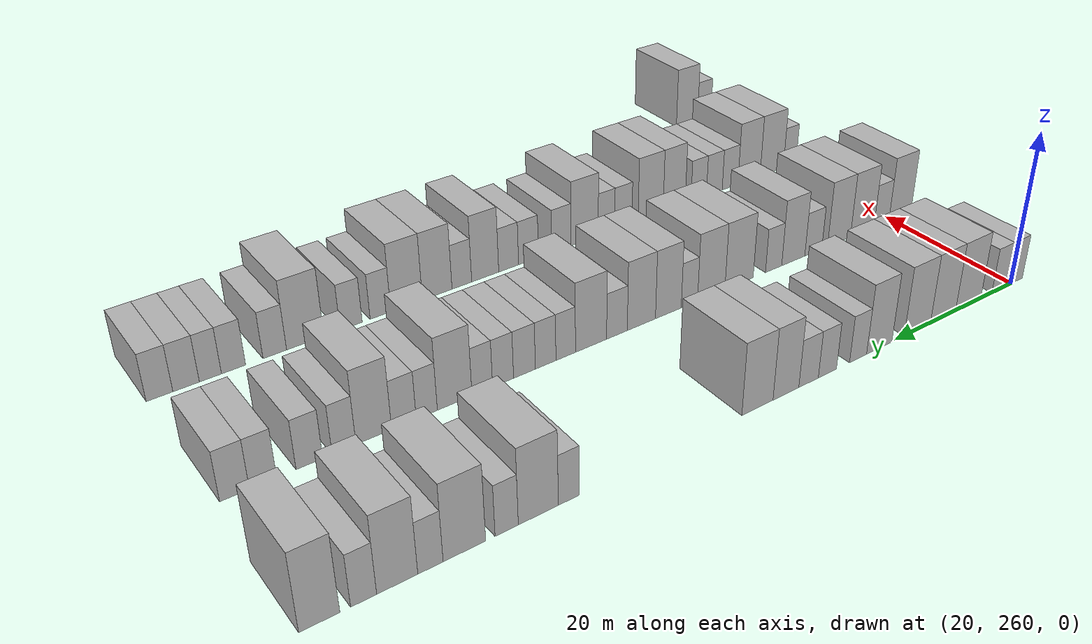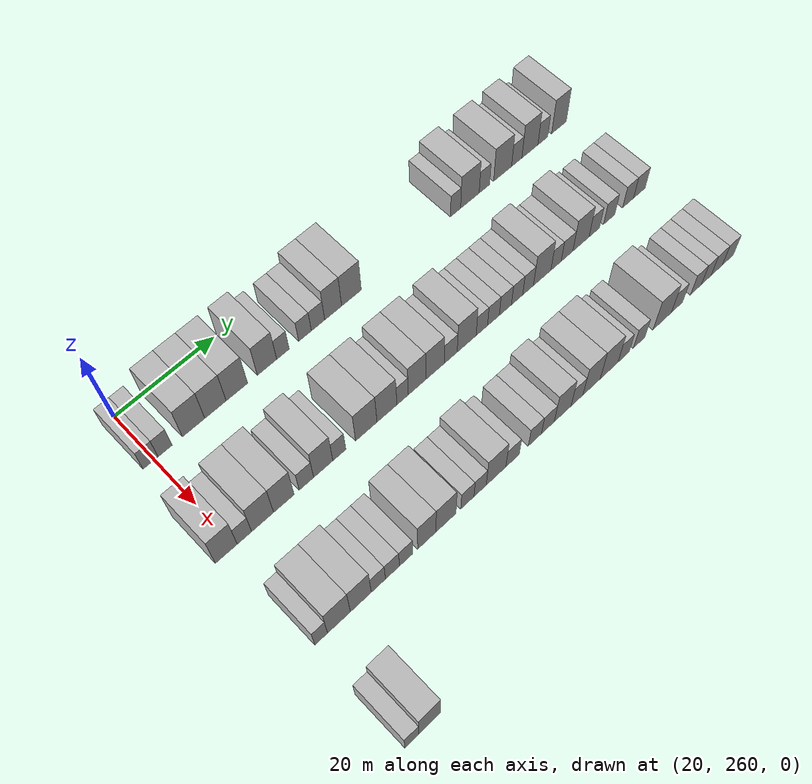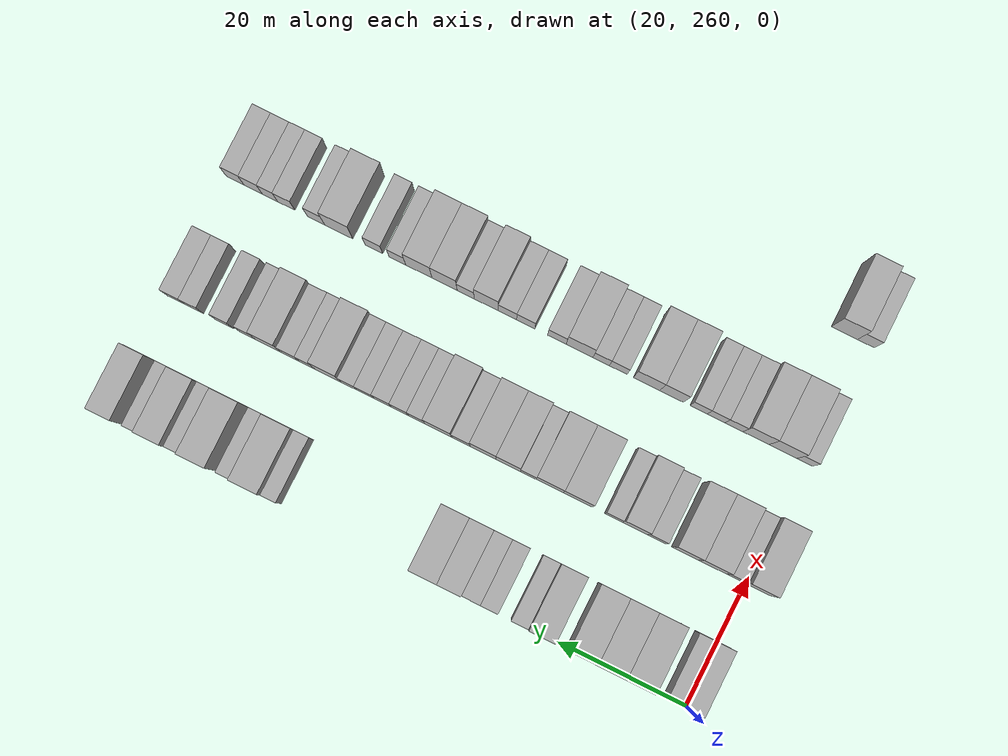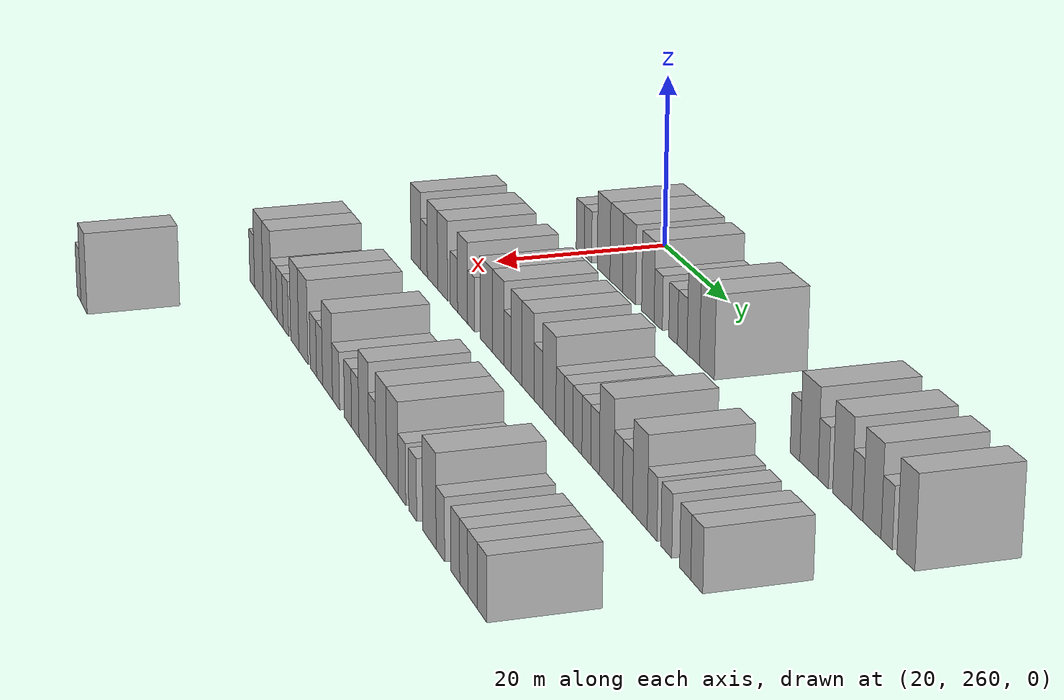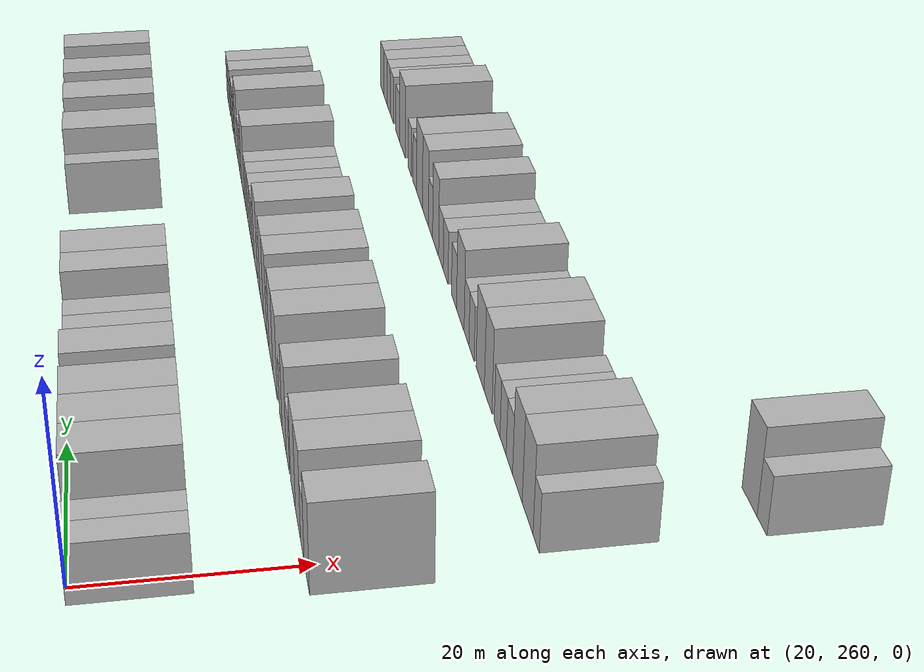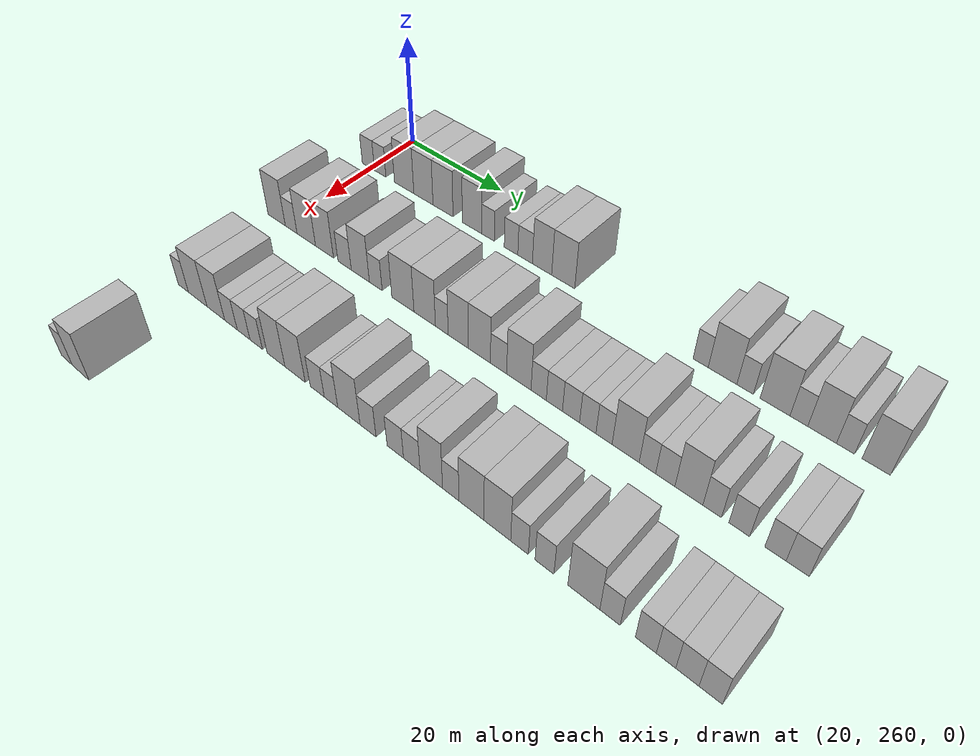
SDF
<sdf version="1.6">
 <world name="default">
  <model name="building_158">
   <static>1</static>
   <pose>25.0000 259.3134 0 0.000000 0.000000 0.000000</pose>
   <link name="link">
    <pose>0 0 3.00 0 0 0</pose>
    <collision name="collision"><geometry><box><size>10.0000 2.8975 6.0000</size></box></geometry></collision>
    <visual name="visual">
     <cast_shadows>0</cast_shadows>
     <geometry><box><size>10.0000 2.8975 6.0000</size></box></geometry>
     <material>
      <script>
       <uri>model://HANNAS_wall/materials/scripts</uri>
       <uri>model://HANNAS_wall/materials/textures</uri>
       <name>vrc/HANNAS_wall</name>
      </script>
     </material>
    </visual>
   </link>
  </model>
  <model name="building_159">
   <static>1</static>
   <pose>25.0000 262.1163 0 0.000000 0.000000 0.000000</pose>
   <link name="link">
    <pose>0 0 3.00 0 0 0</pose>
    <collision name="collision"><geometry><box><size>10.0000 2.7084 6.0000</size></box></geometry></collision>
    <visual name="visual">
     <cast_shadows>0</cast_shadows>
     <geometry><box><size>10.0000 2.7084 6.0000</size></box></geometry>
     <material>
      <script>
       <uri>model://HANNAS_wall/materials/scripts</uri>
       <uri>model://HANNAS_wall/materials/textures</uri>
       <name>vrc/HANNAS_wall</name>
      </script>
     </material>
    </visual>
   </link>
  </model>
  <model name="building_160">
   <static>1</static>
   <pose>25.0000 267.6855 0 0.000000 0.000000 0.000000</pose>
   <link name="link">
    <pose>0 0 4.50 0 0 0</pose>
    <collision name="collision"><geometry><box><size>10.0000 4.4300 9.0000</size></box></geometry></collision>
    <visual name="visual">
     <cast_shadows>0</cast_shadows>
     <geometry><box><size>10.0000 4.4300 9.0000</size></box></geometry>
     <material>
      <script>
       <uri>model://HANNAS_wall/materials/scripts</uri>
       <uri>model://HANNAS_wall/materials/textures</uri>
       <name>vrc/HANNAS_wall</name>
      </script>
     </material>
    </visual>
   </link>
  </model>
  <model name="building_161">
   <static>1</static>
   <pose>25.0000 272.0436 0 0.000000 0.000000 0.000000</pose>
   <link name="link">
    <pose>0 0 4.50 0 0 0</pose>
    <collision name="collision"><geometry><box><size>10.0000 4.2862 9.0000</size></box></geometry></collision>
    <visual name="visual">
     <cast_shadows>0</cast_shadows>
     <geometry><box><size>10.0000 4.2862 9.0000</size></box></geometry>
     <material>
      <script>
       <uri>model://HANNAS_wall/materials/scripts</uri>
       <uri>model://HANNAS_wall/materials/textures</uri>
       <name>vrc/HANNAS_wall</name>
      </script>
     </material>
    </visual>
   </link>
  </model>
  <model name="building_162">
   <static>1</static>
   <pose>25.0000 276.3639 0 0.000000 0.000000 0.000000</pose>
   <link name="link">
    <pose>0 0 4.50 0 0 0</pose>
    <collision name="collision"><geometry><box><size>10.0000 4.3543 9.0000</size></box></geometry></collision>
    <visual name="visual">
     <cast_shadows>0</cast_shadows>
     <geometry><box><size>10.0000 4.3543 9.0000</size></box></geometry>
     <material>
      <script>
       <uri>model://HANNAS_wall/materials/scripts</uri>
       <uri>model://HANNAS_wall/materials/textures</uri>
       <name>vrc/HANNAS_wall</name>
      </script>
     </material>
    </visual>
   </link>
  </model>
  <model name="building_163">
   <static>1</static>
   <pose>25.0000 282.5454 0 0.000000 0.000000 0.000000</pose>
   <link name="link">
    <pose>0 0 4.50 0 0 0</pose>
    <collision name="collision"><geometry><box><size>10.0000 4.0086 9.0000</size></box></geometry></collision>
    <visual name="visual">
     <cast_shadows>0</cast_shadows>
     <geometry><box><size>10.0000 4.0086 9.0000</size></box></geometry>
     <material>
      <script>
       <uri>model://HANNAS_wall/materials/scripts</uri>
       <uri>model://HANNAS_wall/materials/textures</uri>
       <name>vrc/HANNAS_wall</name>
      </script>
     </material>
    </visual>
   </link>
  </model>
  <model name="building_164">
   <static>1</static>
   <pose>25.0000 285.8648 0 0.000000 0.000000 0.000000</pose>
   <link name="link">
    <pose>0 0 3.00 0 0 0</pose>
    <collision name="collision"><geometry><box><size>10.0000 2.6303 6.0000</size></box></geometry></collision>
    <visual name="visual">
     <cast_shadows>0</cast_shadows>
     <geometry><box><size>10.0000 2.6303 6.0000</size></box></geometry>
     <material>
      <script>
       <uri>model://HANNAS_wall/materials/scripts</uri>
       <uri>model://HANNAS_wall/materials/textures</uri>
       <name>vrc/HANNAS_wall</name>
      </script>
     </material>
    </visual>
   </link>
  </model>
  <model name="building_165">
   <static>1</static>
   <pose>25.0000 290.5354 0 0.000000 0.000000 0.000000</pose>
   <link name="link">
    <pose>0 0 3.00 0 0 0</pose>
    <collision name="collision"><geometry><box><size>10.0000 2.7110 6.0000</size></box></geometry></collision>
    <visual name="visual">
     <cast_shadows>0</cast_shadows>
     <geometry><box><size>10.0000 2.7110 6.0000</size></box></geometry>
     <material>
      <script>
       <uri>model://HANNAS_wall/materials/scripts</uri>
       <uri>model://HANNAS_wall/materials/textures</uri>
       <name>vrc/HANNAS_wall</name>
      </script>
     </material>
    </visual>
   </link>
  </model>
  <model name="building_166">
   <static>1</static>
   <pose>25.0000 293.3190 0 0.000000 0.000000 0.000000</pose>
   <link name="link">
    <pose>0 0 3.00 0 0 0</pose>
    <collision name="collision"><geometry><box><size>10.0000 2.8562 6.0000</size></box></geometry></collision>
    <visual name="visual">
     <cast_shadows>0</cast_shadows>
     <geometry><box><size>10.0000 2.8562 6.0000</size></box></geometry>
     <material>
      <script>
       <uri>model://HANNAS_wall/materials/scripts</uri>
       <uri>model://HANNAS_wall/materials/textures</uri>
       <name>vrc/HANNAS_wall</name>
      </script>
     </material>
    </visual>
   </link>
  </model>
  <model name="building_167">
   <static>1</static>
   <pose>25.0000 296.5931 0 0.000000 0.000000 0.000000</pose>
   <link name="link">
    <pose>0 0 4.50 0 0 0</pose>
    <collision name="collision"><geometry><box><size>10.0000 3.6919 9.0000</size></box></geometry></collision>
    <visual name="visual">
     <cast_shadows>0</cast_shadows>
     <geometry><box><size>10.0000 3.6919 9.0000</size></box></geometry>
     <material>
      <script>
       <uri>model://HANNAS_wall/materials/scripts</uri>
       <uri>model://HANNAS_wall/materials/textures</uri>
       <name>vrc/HANNAS_wall</name>
      </script>
     </material>
    </visual>
   </link>
  </model>
  <model name="building_168">
   <static>1</static>
   <pose>25.0000 300.5993 0 0.000000 0.000000 0.000000</pose>
   <link name="link">
    <pose>0 0 4.50 0 0 0</pose>
    <collision name="collision"><geometry><box><size>10.0000 4.3204 9.0000</size></box></geometry></collision>
    <visual name="visual">
     <cast_shadows>0</cast_shadows>
     <geometry><box><size>10.0000 4.3204 9.0000</size></box></geometry>
     <material>
      <script>
       <uri>model://HANNAS_wall/materials/scripts</uri>
       <uri>model://HANNAS_wall/materials/textures</uri>
       <name>vrc/HANNAS_wall</name>
      </script>
     </material>
    </visual>
   </link>
  </model>
  <model name="building_169">
   <static>1</static>
   <pose>25.0000 324.3744 0 0.000000 0.000000 0.000000</pose>
   <link name="link">
    <pose>0 0 3.00 0 0 0</pose>
    <collision name="collision"><geometry><box><size>10.0000 2.4100 6.0000</size></box></geometry></collision>
    <visual name="visual">
     <cast_shadows>0</cast_shadows>
     <geometry><box><size>10.0000 2.4100 6.0000</size></box></geometry>
     <material>
      <script>
       <uri>model://HANNAS_wall/materials/scripts</uri>
       <uri>model://HANNAS_wall/materials/textures</uri>
       <name>vrc/HANNAS_wall</name>
      </script>
     </material>
    </visual>
   </link>
  </model>
  <model name="building_170">
   <static>1</static>
   <pose>25.0000 327.8074 0 0.000000 0.000000 0.000000</pose>
   <link name="link">
    <pose>0 0 4.50 0 0 0</pose>
    <collision name="collision"><geometry><box><size>10.0000 4.4559 9.0000</size></box></geometry></collision>
    <visual name="visual">
     <cast_shadows>0</cast_shadows>
     <geometry><box><size>10.0000 4.4559 9.0000</size></box></geometry>
     <material>
      <script>
       <uri>model://HANNAS_wall/materials/scripts</uri>
       <uri>model://HANNAS_wall/materials/textures</uri>
       <name>vrc/HANNAS_wall</name>
      </script>
     </material>
    </visual>
   </link>
  </model>
  <model name="building_171">
   <static>1</static>
   <pose>25.0000 331.2910 0 0.000000 0.000000 0.000000</pose>
   <link name="link">
    <pose>0 0 3.00 0 0 0</pose>
    <collision name="collision"><geometry><box><size>10.0000 2.5112 6.0000</size></box></geometry></collision>
    <visual name="visual">
     <cast_shadows>0</cast_shadows>
     <geometry><box><size>10.0000 2.5112 6.0000</size></box></geometry>
     <material>
      <script>
       <uri>model://HANNAS_wall/materials/scripts</uri>
       <uri>model://HANNAS_wall/materials/textures</uri>
       <name>vrc/HANNAS_wall</name>
      </script>
     </material>
    </visual>
   </link>
  </model>
  <model name="building_172">
   <static>1</static>
   <pose>25.0000 335.7538 0 0.000000 0.000000 0.000000</pose>
   <link name="link">
    <pose>0 0 4.50 0 0 0</pose>
    <collision name="collision"><geometry><box><size>10.0000 4.4143 9.0000</size></box></geometry></collision>
    <visual name="visual">
     <cast_shadows>0</cast_shadows>
     <geometry><box><size>10.0000 4.4143 9.0000</size></box></geometry>
     <material>
      <script>
       <uri>model://HANNAS_wall/materials/scripts</uri>
       <uri>model://HANNAS_wall/materials/textures</uri>
       <name>vrc/HANNAS_wall</name>
      </script>
     </material>
    </visual>
   </link>
  </model>
  <model name="building_173">
   <static>1</static>
   <pose>25.0000 339.2369 0 0.000000 0.000000 0.000000</pose>
   <link name="link">
    <pose>0 0 3.00 0 0 0</pose>
    <collision name="collision"><geometry><box><size>10.0000 2.5520 6.0000</size></box></geometry></collision>
    <visual name="visual">
     <cast_shadows>0</cast_shadows>
     <geometry><box><size>10.0000 2.5520 6.0000</size></box></geometry>
     <material>
      <script>
       <uri>model://HANNAS_wall/materials/scripts</uri>
       <uri>model://HANNAS_wall/materials/textures</uri>
       <name>vrc/HANNAS_wall</name>
      </script>
     </material>
    </visual>
   </link>
  </model>
  <model name="building_174">
   <static>1</static>
   <pose>25.0000 342.5220 0 0.000000 0.000000 0.000000</pose>
   <link name="link">
    <pose>0 0 4.50 0 0 0</pose>
    <collision name="collision"><geometry><box><size>10.0000 4.0182 9.0000</size></box></geometry></collision>
    <visual name="visual">
     <cast_shadows>0</cast_shadows>
     <geometry><box><size>10.0000 4.0182 9.0000</size></box></geometry>
     <material>
      <script>
       <uri>model://HANNAS_wall/materials/scripts</uri>
       <uri>model://HANNAS_wall/materials/textures</uri>
       <name>vrc/HANNAS_wall</name>
      </script>
     </material>
    </visual>
   </link>
  </model>
  <model name="building_175">
   <static>1</static>
   <pose>25.0000 345.7687 0 0.000000 0.000000 0.000000</pose>
   <link name="link">
    <pose>0 0 3.00 0 0 0</pose>
    <collision name="collision"><geometry><box><size>10.0000 2.4752 6.0000</size></box></geometry></collision>
    <visual name="visual">
     <cast_shadows>0</cast_shadows>
     <geometry><box><size>10.0000 2.4752 6.0000</size></box></geometry>
     <material>
      <script>
       <uri>model://HANNAS_wall/materials/scripts</uri>
       <uri>model://HANNAS_wall/materials/textures</uri>
       <name>vrc/HANNAS_wall</name>
      </script>
     </material>
    </visual>
   </link>
  </model>
  <model name="building_176">
   <static>1</static>
   <pose>25.0000 349.8920 0 0.000000 0.000000 0.000000</pose>
   <link name="link">
    <pose>0 0 4.50 0 0 0</pose>
    <collision name="collision"><geometry><box><size>10.0000 3.7712 9.0000</size></box></geometry></collision>
    <visual name="visual">
     <cast_shadows>0</cast_shadows>
     <geometry><box><size>10.0000 3.7712 9.0000</size></box></geometry>
     <material>
      <script>
       <uri>model://HANNAS_wall/materials/scripts</uri>
       <uri>model://HANNAS_wall/materials/textures</uri>
       <name>vrc/HANNAS_wall</name>
      </script>
     </material>
    </visual>
   </link>
  </model>
  <model name="building_320">
   <static>1</static>
   <pose>44.0000 258.3635 0 0.000000 0.000000 0.000000</pose>
   <link name="link">
    <pose>0 0 4.50 0 0 0</pose>
    <collision name="collision"><geometry><box><size>10.0000 4.1656 9.0000</size></box></geometry></collision>
    <visual name="visual">
     <cast_shadows>0</cast_shadows>
     <geometry><box><size>10.0000 4.1656 9.0000</size></box></geometry>
     <material>
      <script>
       <uri>model://HANNAS_wall/materials/scripts</uri>
       <uri>model://HANNAS_wall/materials/textures</uri>
       <name>vrc/HANNAS_wall</name>
      </script>
     </material>
    </visual>
   </link>
  </model>
  <model name="building_321">
   <static>1</static>
   <pose>44.0000 261.8318 0 0.000000 0.000000 0.000000</pose>
   <link name="link">
    <pose>0 0 3.00 0 0 0</pose>
    <collision name="collision"><geometry><box><size>10.0000 2.7711 6.0000</size></box></geometry></collision>
    <visual name="visual">
     <cast_shadows>0</cast_shadows>
     <geometry><box><size>10.0000 2.7711 6.0000</size></box></geometry>
     <material>
      <script>
       <uri>model://HANNAS_wall/materials/scripts</uri>
       <uri>model://HANNAS_wall/materials/textures</uri>
       <name>vrc/HANNAS_wall</name>
      </script>
     </material>
    </visual>
   </link>
  </model>
  <model name="building_322">
   <static>1</static>
   <pose>44.0000 265.3546 0 0.000000 0.000000 0.000000</pose>
   <link name="link">
    <pose>0 0 4.50 0 0 0</pose>
    <collision name="collision"><geometry><box><size>10.0000 4.2746 9.0000</size></box></geometry></collision>
    <visual name="visual">
     <cast_shadows>0</cast_shadows>
     <geometry><box><size>10.0000 4.2746 9.0000</size></box></geometry>
     <material>
      <script>
       <uri>model://HANNAS_wall/materials/scripts</uri>
       <uri>model://HANNAS_wall/materials/textures</uri>
       <name>vrc/HANNAS_wall</name>
      </script>
     </material>
    </visual>
   </link>
  </model>
  <model name="building_323">
   <static>1</static>
   <pose>44.0000 269.5151 0 0.000000 0.000000 0.000000</pose>
   <link name="link">
    <pose>0 0 4.50 0 0 0</pose>
    <collision name="collision"><geometry><box><size>10.0000 4.0462 9.0000</size></box></geometry></collision>
    <visual name="visual">
     <cast_shadows>0</cast_shadows>
     <geometry><box><size>10.0000 4.0462 9.0000</size></box></geometry>
     <material>
      <script>
       <uri>model://HANNAS_wall/materials/scripts</uri>
       <uri>model://HANNAS_wall/materials/textures</uri>
       <name>vrc/HANNAS_wall</name>
      </script>
     </material>
    </visual>
   </link>
  </model>
  <model name="building_324">
   <static>1</static>
   <pose>44.0000 273.9960 0 0.000000 0.000000 0.000000</pose>
   <link name="link">
    <pose>0 0 3.00 0 0 0</pose>
    <collision name="collision"><geometry><box><size>10.0000 2.9157 6.0000</size></box></geometry></collision>
    <visual name="visual">
     <cast_shadows>0</cast_shadows>
     <geometry><box><size>10.0000 2.9157 6.0000</size></box></geometry>
     <material>
      <script>
       <uri>model://HANNAS_wall/materials/scripts</uri>
       <uri>model://HANNAS_wall/materials/textures</uri>
       <name>vrc/HANNAS_wall</name>
      </script>
     </material>
    </visual>
   </link>
  </model>
  <model name="building_325">
   <static>1</static>
   <pose>44.0000 277.3968 0 0.000000 0.000000 0.000000</pose>
   <link name="link">
    <pose>0 0 4.50 0 0 0</pose>
    <collision name="collision"><geometry><box><size>10.0000 3.8858 9.0000</size></box></geometry></collision>
    <visual name="visual">
     <cast_shadows>0</cast_shadows>
     <geometry><box><size>10.0000 3.8858 9.0000</size></box></geometry>
     <material>
      <script>
       <uri>model://HANNAS_wall/materials/scripts</uri>
       <uri>model://HANNAS_wall/materials/textures</uri>
       <name>vrc/HANNAS_wall</name>
      </script>
     </material>
    </visual>
   </link>
  </model>
  <model name="building_326">
   <static>1</static>
   <pose>44.0000 280.6738 0 0.000000 0.000000 0.000000</pose>
   <link name="link">
    <pose>0 0 3.00 0 0 0</pose>
    <collision name="collision"><geometry><box><size>10.0000 2.6682 6.0000</size></box></geometry></collision>
    <visual name="visual">
     <cast_shadows>0</cast_shadows>
     <geometry><box><size>10.0000 2.6682 6.0000</size></box></geometry>
     <material>
      <script>
       <uri>model://HANNAS_wall/materials/scripts</uri>
       <uri>model://HANNAS_wall/materials/textures</uri>
       <name>vrc/HANNAS_wall</name>
      </script>
     </material>
    </visual>
   </link>
  </model>
  <model name="building_327">
   <static>1</static>
   <pose>44.0000 286.2523 0 0.000000 0.000000 0.000000</pose>
   <link name="link">
    <pose>0 0 4.50 0 0 0</pose>
    <collision name="collision"><geometry><box><size>10.0000 4.4889 9.0000</size></box></geometry></collision>
    <visual name="visual">
     <cast_shadows>0</cast_shadows>
     <geometry><box><size>10.0000 4.4889 9.0000</size></box></geometry>
     <material>
      <script>
       <uri>model://HANNAS_wall/materials/scripts</uri>
       <uri>model://HANNAS_wall/materials/textures</uri>
       <name>vrc/HANNAS_wall</name>
      </script>
     </material>
    </visual>
   </link>
  </model>
  <model name="building_328">
   <static>1</static>
   <pose>44.0000 290.6087 0 0.000000 0.000000 0.000000</pose>
   <link name="link">
    <pose>0 0 4.50 0 0 0</pose>
    <collision name="collision"><geometry><box><size>10.0000 4.2240 9.0000</size></box></geometry></collision>
    <visual name="visual">
     <cast_shadows>0</cast_shadows>
     <geometry><box><size>10.0000 4.2240 9.0000</size></box></geometry>
     <material>
      <script>
       <uri>model://HANNAS_wall/materials/scripts</uri>
       <uri>model://HANNAS_wall/materials/textures</uri>
       <name>vrc/HANNAS_wall</name>
      </script>
     </material>
    </visual>
   </link>
  </model>
  <model name="building_329">
   <static>1</static>
   <pose>44.0000 293.9461 0 0.000000 0.000000 0.000000</pose>
   <link name="link">
    <pose>0 0 3.00 0 0 0</pose>
    <collision name="collision"><geometry><box><size>10.0000 2.4508 6.0000</size></box></geometry></collision>
    <visual name="visual">
     <cast_shadows>0</cast_shadows>
     <geometry><box><size>10.0000 2.4508 6.0000</size></box></geometry>
     <material>
      <script>
       <uri>model://HANNAS_wall/materials/scripts</uri>
       <uri>model://HANNAS_wall/materials/textures</uri>
       <name>vrc/HANNAS_wall</name>
      </script>
     </material>
    </visual>
   </link>
  </model>
  <model name="building_330">
   <static>1</static>
   <pose>44.0000 297.0698 0 0.000000 0.000000 0.000000</pose>
   <link name="link">
    <pose>0 0 4.50 0 0 0</pose>
    <collision name="collision"><geometry><box><size>10.0000 3.7965 9.0000</size></box></geometry></collision>
    <visual name="visual">
     <cast_shadows>0</cast_shadows>
     <geometry><box><size>10.0000 3.7965 9.0000</size></box></geometry>
     <material>
      <script>
       <uri>model://HANNAS_wall/materials/scripts</uri>
       <uri>model://HANNAS_wall/materials/textures</uri>
       <name>vrc/HANNAS_wall</name>
      </script>
     </material>
    </visual>
   </link>
  </model>
  <model name="building_331">
   <static>1</static>
   <pose>44.0000 300.9903 0 0.000000 0.000000 0.000000</pose>
   <link name="link">
    <pose>0 0 4.50 0 0 0</pose>
    <collision name="collision"><geometry><box><size>10.0000 4.0444 9.0000</size></box></geometry></collision>
    <visual name="visual">
     <cast_shadows>0</cast_shadows>
     <geometry><box><size>10.0000 4.0444 9.0000</size></box></geometry>
     <material>
      <script>
       <uri>model://HANNAS_wall/materials/scripts</uri>
       <uri>model://HANNAS_wall/materials/textures</uri>
       <name>vrc/HANNAS_wall</name>
      </script>
     </material>
    </visual>
   </link>
  </model>
  <model name="building_332">
   <static>1</static>
   <pose>44.0000 304.4606 0 0.000000 0.000000 0.000000</pose>
   <link name="link">
    <pose>0 0 3.00 0 0 0</pose>
    <collision name="collision"><geometry><box><size>10.0000 2.8963 6.0000</size></box></geometry></collision>
    <visual name="visual">
     <cast_shadows>0</cast_shadows>
     <geometry><box><size>10.0000 2.8963 6.0000</size></box></geometry>
     <material>
      <script>
       <uri>model://HANNAS_wall/materials/scripts</uri>
       <uri>model://HANNAS_wall/materials/textures</uri>
       <name>vrc/HANNAS_wall</name>
      </script>
     </material>
    </visual>
   </link>
  </model>
  <model name="building_333">
   <static>1</static>
   <pose>44.0000 308.0352 0 0.000000 0.000000 0.000000</pose>
   <link name="link">
    <pose>0 0 4.50 0 0 0</pose>
    <collision name="collision"><geometry><box><size>10.0000 4.2530 9.0000</size></box></geometry></collision>
    <visual name="visual">
     <cast_shadows>0</cast_shadows>
     <geometry><box><size>10.0000 4.2530 9.0000</size></box></geometry>
     <material>
      <script>
       <uri>model://HANNAS_wall/materials/scripts</uri>
       <uri>model://HANNAS_wall/materials/textures</uri>
       <name>vrc/HANNAS_wall</name>
      </script>
     </material>
    </visual>
   </link>
  </model>
  <model name="building_334">
   <static>1</static>
   <pose>44.0000 311.4619 0 0.000000 0.000000 0.000000</pose>
   <link name="link">
    <pose>0 0 3.00 0 0 0</pose>
    <collision name="collision"><geometry><box><size>10.0000 2.6003 6.0000</size></box></geometry></collision>
    <visual name="visual">
     <cast_shadows>0</cast_shadows>
     <geometry><box><size>10.0000 2.6003 6.0000</size></box></geometry>
     <material>
      <script>
       <uri>model://HANNAS_wall/materials/scripts</uri>
       <uri>model://HANNAS_wall/materials/textures</uri>
       <name>vrc/HANNAS_wall</name>
      </script>
     </material>
    </visual>
   </link>
  </model>
  <model name="building_335">
   <static>1</static>
   <pose>44.0000 314.1074 0 0.000000 0.000000 0.000000</pose>
   <link name="link">
    <pose>0 0 3.00 0 0 0</pose>
    <collision name="collision"><geometry><box><size>10.0000 2.6908 6.0000</size></box></geometry></collision>
    <visual name="visual">
     <cast_shadows>0</cast_shadows>
     <geometry><box><size>10.0000 2.6908 6.0000</size></box></geometry>
     <material>
      <script>
       <uri>model://HANNAS_wall/materials/scripts</uri>
       <uri>model://HANNAS_wall/materials/textures</uri>
       <name>vrc/HANNAS_wall</name>
      </script>
     </material>
    </visual>
   </link>
  </model>
  <model name="building_336">
   <static>1</static>
   <pose>44.0000 316.8532 0 0.000000 0.000000 0.000000</pose>
   <link name="link">
    <pose>0 0 3.00 0 0 0</pose>
    <collision name="collision"><geometry><box><size>10.0000 2.8008 6.0000</size></box></geometry></collision>
    <visual name="visual">
     <cast_shadows>0</cast_shadows>
     <geometry><box><size>10.0000 2.8008 6.0000</size></box></geometry>
     <material>
      <script>
       <uri>model://HANNAS_wall/materials/scripts</uri>
       <uri>model://HANNAS_wall/materials/textures</uri>
       <name>vrc/HANNAS_wall</name>
      </script>
     </material>
    </visual>
   </link>
  </model>
  <model name="building_337">
   <static>1</static>
   <pose>44.0000 319.5683 0 0.000000 0.000000 0.000000</pose>
   <link name="link">
    <pose>0 0 3.00 0 0 0</pose>
    <collision name="collision"><geometry><box><size>10.0000 2.6293 6.0000</size></box></geometry></collision>
    <visual name="visual">
     <cast_shadows>0</cast_shadows>
     <geometry><box><size>10.0000 2.6293 6.0000</size></box></geometry>
     <material>
      <script>
       <uri>model://HANNAS_wall/materials/scripts</uri>
       <uri>model://HANNAS_wall/materials/textures</uri>
       <name>vrc/HANNAS_wall</name>
      </script>
     </material>
    </visual>
   </link>
  </model>
  <model name="building_338">
   <static>1</static>
   <pose>44.0000 322.1538 0 0.000000 0.000000 0.000000</pose>
   <link name="link">
    <pose>0 0 3.00 0 0 0</pose>
    <collision name="collision"><geometry><box><size>10.0000 2.5418 6.0000</size></box></geometry></collision>
    <visual name="visual">
     <cast_shadows>0</cast_shadows>
     <geometry><box><size>10.0000 2.5418 6.0000</size></box></geometry>
     <material>
      <script>
       <uri>model://HANNAS_wall/materials/scripts</uri>
       <uri>model://HANNAS_wall/materials/textures</uri>
       <name>vrc/HANNAS_wall</name>
      </script>
     </material>
    </visual>
   </link>
  </model>
  <model name="building_339">
   <static>1</static>
   <pose>44.0000 325.5037 0 0.000000 0.000000 0.000000</pose>
   <link name="link">
    <pose>0 0 4.50 0 0 0</pose>
    <collision name="collision"><geometry><box><size>10.0000 4.1580 9.0000</size></box></geometry></collision>
    <visual name="visual">
     <cast_shadows>0</cast_shadows>
     <geometry><box><size>10.0000 4.1580 9.0000</size></box></geometry>
     <material>
      <script>
       <uri>model://HANNAS_wall/materials/scripts</uri>
       <uri>model://HANNAS_wall/materials/textures</uri>
       <name>vrc/HANNAS_wall</name>
      </script>
     </material>
    </visual>
   </link>
  </model>
  <model name="building_340">
   <static>1</static>
   <pose>44.0000 328.8182 0 0.000000 0.000000 0.000000</pose>
   <link name="link">
    <pose>0 0 3.00 0 0 0</pose>
    <collision name="collision"><geometry><box><size>10.0000 2.4710 6.0000</size></box></geometry></collision>
    <visual name="visual">
     <cast_shadows>0</cast_shadows>
     <geometry><box><size>10.0000 2.4710 6.0000</size></box></geometry>
     <material>
      <script>
       <uri>model://HANNAS_wall/materials/scripts</uri>
       <uri>model://HANNAS_wall/materials/textures</uri>
       <name>vrc/HANNAS_wall</name>
      </script>
     </material>
    </visual>
   </link>
  </model>
  <model name="building_341">
   <static>1</static>
   <pose>44.0000 331.4637 0 0.000000 0.000000 0.000000</pose>
   <link name="link">
    <pose>0 0 3.00 0 0 0</pose>
    <collision name="collision"><geometry><box><size>10.0000 2.8202 6.0000</size></box></geometry></collision>
    <visual name="visual">
     <cast_shadows>0</cast_shadows>
     <geometry><box><size>10.0000 2.8202 6.0000</size></box></geometry>
     <material>
      <script>
       <uri>model://HANNAS_wall/materials/scripts</uri>
       <uri>model://HANNAS_wall/materials/textures</uri>
       <name>vrc/HANNAS_wall</name>
      </script>
     </material>
    </visual>
   </link>
  </model>
  <model name="building_342">
   <static>1</static>
   <pose>44.0000 334.8687 0 0.000000 0.000000 0.000000</pose>
   <link name="link">
    <pose>0 0 4.50 0 0 0</pose>
    <collision name="collision"><geometry><box><size>10.0000 3.9897 9.0000</size></box></geometry></collision>
    <visual name="visual">
     <cast_shadows>0</cast_shadows>
     <geometry><box><size>10.0000 3.9897 9.0000</size></box></geometry>
     <material>
      <script>
       <uri>model://HANNAS_wall/materials/scripts</uri>
       <uri>model://HANNAS_wall/materials/textures</uri>
       <name>vrc/HANNAS_wall</name>
      </script>
     </material>
    </visual>
   </link>
  </model>
  <model name="building_343">
   <static>1</static>
   <pose>44.0000 338.1605 0 0.000000 0.000000 0.000000</pose>
   <link name="link">
    <pose>0 0 3.00 0 0 0</pose>
    <collision name="collision"><geometry><box><size>10.0000 2.5939 6.0000</size></box></geometry></collision>
    <visual name="visual">
     <cast_shadows>0</cast_shadows>
     <geometry><box><size>10.0000 2.5939 6.0000</size></box></geometry>
     <material>
      <script>
       <uri>model://HANNAS_wall/materials/scripts</uri>
       <uri>model://HANNAS_wall/materials/textures</uri>
       <name>vrc/HANNAS_wall</name>
      </script>
     </material>
    </visual>
   </link>
  </model>
  <model name="building_344">
   <static>1</static>
   <pose>44.0000 341.8704 0 0.000000 0.000000 0.000000</pose>
   <link name="link">
    <pose>0 0 3.00 0 0 0</pose>
    <collision name="collision"><geometry><box><size>10.0000 2.8259 6.0000</size></box></geometry></collision>
    <visual name="visual">
     <cast_shadows>0</cast_shadows>
     <geometry><box><size>10.0000 2.8259 6.0000</size></box></geometry>
     <material>
      <script>
       <uri>model://HANNAS_wall/materials/scripts</uri>
       <uri>model://HANNAS_wall/materials/textures</uri>
       <name>vrc/HANNAS_wall</name>
      </script>
     </material>
    </visual>
   </link>
  </model>
  <model name="building_345">
   <static>1</static>
   <pose>44.0000 346.6680 0 0.000000 0.000000 0.000000</pose>
   <link name="link">
    <pose>0 0 3.00 0 0 0</pose>
    <collision name="collision"><geometry><box><size>10.0000 2.7693 6.0000</size></box></geometry></collision>
    <visual name="visual">
     <cast_shadows>0</cast_shadows>
     <geometry><box><size>10.0000 2.7693 6.0000</size></box></geometry>
     <material>
      <script>
       <uri>model://HANNAS_wall/materials/scripts</uri>
       <uri>model://HANNAS_wall/materials/textures</uri>
       <name>vrc/HANNAS_wall</name>
      </script>
     </material>
    </visual>
   </link>
  </model>
  <model name="building_346">
   <static>1</static>
   <pose>44.0000 349.5346 0 0.000000 0.000000 0.000000</pose>
   <link name="link">
    <pose>0 0 3.00 0 0 0</pose>
    <collision name="collision"><geometry><box><size>10.0000 2.9639 6.0000</size></box></geometry></collision>
    <visual name="visual">
     <cast_shadows>0</cast_shadows>
     <geometry><box><size>10.0000 2.9639 6.0000</size></box></geometry>
     <material>
      <script>
       <uri>model://HANNAS_wall/materials/scripts</uri>
       <uri>model://HANNAS_wall/materials/textures</uri>
       <name>vrc/HANNAS_wall</name>
      </script>
     </material>
    </visual>
   </link>
  </model>
  <model name="building_492">
   <static>1</static>
   <pose>63.0000 259.9453 0 0.000000 0.000000 0.000000</pose>
   <link name="link">
    <pose>0 0 3.00 0 0 0</pose>
    <collision name="collision"><geometry><box><size>10.0000 2.4159 6.0000</size></box></geometry></collision>
    <visual name="visual">
     <cast_shadows>0</cast_shadows>
     <geometry><box><size>10.0000 2.4159 6.0000</size></box></geometry>
     <material>
      <script>
       <uri>model://HANNAS_wall/materials/scripts</uri>
       <uri>model://HANNAS_wall/materials/textures</uri>
       <name>vrc/HANNAS_wall</name>
      </script>
     </material>
    </visual>
   </link>
  </model>
  <model name="building_493">
   <static>1</static>
   <pose>63.0000 263.3434 0 0.000000 0.000000 0.000000</pose>
   <link name="link">
    <pose>0 0 4.50 0 0 0</pose>
    <collision name="collision"><geometry><box><size>10.0000 4.3804 9.0000</size></box></geometry></collision>
    <visual name="visual">
     <cast_shadows>0</cast_shadows>
     <geometry><box><size>10.0000 4.3804 9.0000</size></box></geometry>
     <material>
      <script>
       <uri>model://HANNAS_wall/materials/scripts</uri>
       <uri>model://HANNAS_wall/materials/textures</uri>
       <name>vrc/HANNAS_wall</name>
      </script>
     </material>
    </visual>
   </link>
  </model>
  <model name="building_494">
   <static>1</static>
   <pose>63.0000 267.5681 0 0.000000 0.000000 0.000000</pose>
   <link name="link">
    <pose>0 0 4.50 0 0 0</pose>
    <collision name="collision"><geometry><box><size>10.0000 4.0689 9.0000</size></box></geometry></collision>
    <visual name="visual">
     <cast_shadows>0</cast_shadows>
     <geometry><box><size>10.0000 4.0689 9.0000</size></box></geometry>
     <material>
      <script>
       <uri>model://HANNAS_wall/materials/scripts</uri>
       <uri>model://HANNAS_wall/materials/textures</uri>
       <name>vrc/HANNAS_wall</name>
      </script>
     </material>
    </visual>
   </link>
  </model>
  <model name="building_495">
   <static>1</static>
   <pose>63.0000 271.0105 0 0.000000 0.000000 0.000000</pose>
   <link name="link">
    <pose>0 0 3.00 0 0 0</pose>
    <collision name="collision"><geometry><box><size>10.0000 2.8160 6.0000</size></box></geometry></collision>
    <visual name="visual">
     <cast_shadows>0</cast_shadows>
     <geometry><box><size>10.0000 2.8160 6.0000</size></box></geometry>
     <material>
      <script>
       <uri>model://HANNAS_wall/materials/scripts</uri>
       <uri>model://HANNAS_wall/materials/textures</uri>
       <name>vrc/HANNAS_wall</name>
      </script>
     </material>
    </visual>
   </link>
  </model>
  <model name="building_496">
   <static>1</static>
   <pose>63.0000 273.8171 0 0.000000 0.000000 0.000000</pose>
   <link name="link">
    <pose>0 0 3.00 0 0 0</pose>
    <collision name="collision"><geometry><box><size>10.0000 2.7973 6.0000</size></box></geometry></collision>
    <visual name="visual">
     <cast_shadows>0</cast_shadows>
     <geometry><box><size>10.0000 2.7973 6.0000</size></box></geometry>
     <material>
      <script>
       <uri>model://HANNAS_wall/materials/scripts</uri>
       <uri>model://HANNAS_wall/materials/textures</uri>
       <name>vrc/HANNAS_wall</name>
      </script>
     </material>
    </visual>
   </link>
  </model>
  <model name="building_497">
   <static>1</static>
   <pose>63.0000 276.5564 0 0.000000 0.000000 0.000000</pose>
   <link name="link">
    <pose>0 0 3.00 0 0 0</pose>
    <collision name="collision"><geometry><box><size>10.0000 2.6813 6.0000</size></box></geometry></collision>
    <visual name="visual">
     <cast_shadows>0</cast_shadows>
     <geometry><box><size>10.0000 2.6813 6.0000</size></box></geometry>
     <material>
      <script>
       <uri>model://HANNAS_wall/materials/scripts</uri>
       <uri>model://HANNAS_wall/materials/textures</uri>
       <name>vrc/HANNAS_wall</name>
      </script>
     </material>
    </visual>
   </link>
  </model>
  <model name="building_498">
   <static>1</static>
   <pose>63.0000 280.7662 0 0.000000 0.000000 0.000000</pose>
   <link name="link">
    <pose>0 0 4.50 0 0 0</pose>
    <collision name="collision"><geometry><box><size>10.0000 3.7382 9.0000</size></box></geometry></collision>
    <visual name="visual">
     <cast_shadows>0</cast_shadows>
     <geometry><box><size>10.0000 3.7382 9.0000</size></box></geometry>
     <material>
      <script>
       <uri>model://HANNAS_wall/materials/scripts</uri>
       <uri>model://HANNAS_wall/materials/textures</uri>
       <name>vrc/HANNAS_wall</name>
      </script>
     </material>
    </visual>
   </link>
  </model>
  <model name="building_499">
   <static>1</static>
   <pose>63.0000 284.7058 0 0.000000 0.000000 0.000000</pose>
   <link name="link">
    <pose>0 0 4.50 0 0 0</pose>
    <collision name="collision"><geometry><box><size>10.0000 4.1411 9.0000</size></box></geometry></collision>
    <visual name="visual">
     <cast_shadows>0</cast_shadows>
     <geometry><box><size>10.0000 4.1411 9.0000</size></box></geometry>
     <material>
      <script>
       <uri>model://HANNAS_wall/materials/scripts</uri>
       <uri>model://HANNAS_wall/materials/textures</uri>
       <name>vrc/HANNAS_wall</name>
      </script>
     </material>
    </visual>
   </link>
  </model>
  <model name="building_500">
   <static>1</static>
   <pose>63.0000 289.1651 0 0.000000 0.000000 0.000000</pose>
   <link name="link">
    <pose>0 0 3.00 0 0 0</pose>
    <collision name="collision"><geometry><box><size>10.0000 2.7774 6.0000</size></box></geometry></collision>
    <visual name="visual">
     <cast_shadows>0</cast_shadows>
     <geometry><box><size>10.0000 2.7774 6.0000</size></box></geometry>
     <material>
      <script>
       <uri>model://HANNAS_wall/materials/scripts</uri>
       <uri>model://HANNAS_wall/materials/textures</uri>
       <name>vrc/HANNAS_wall</name>
      </script>
     </material>
    </visual>
   </link>
  </model>
  <model name="building_501">
   <static>1</static>
   <pose>63.0000 291.8594 0 0.000000 0.000000 0.000000</pose>
   <link name="link">
    <pose>0 0 3.00 0 0 0</pose>
    <collision name="collision"><geometry><box><size>10.0000 2.6111 6.0000</size></box></geometry></collision>
    <visual name="visual">
     <cast_shadows>0</cast_shadows>
     <geometry><box><size>10.0000 2.6111 6.0000</size></box></geometry>
     <material>
      <script>
       <uri>model://HANNAS_wall/materials/scripts</uri>
       <uri>model://HANNAS_wall/materials/textures</uri>
       <name>vrc/HANNAS_wall</name>
      </script>
     </material>
    </visual>
   </link>
  </model>
  <model name="building_502">
   <static>1</static>
   <pose>63.0000 295.2703 0 0.000000 0.000000 0.000000</pose>
   <link name="link">
    <pose>0 0 4.50 0 0 0</pose>
    <collision name="collision"><geometry><box><size>10.0000 4.2108 9.0000</size></box></geometry></collision>
    <visual name="visual">
     <cast_shadows>0</cast_shadows>
     <geometry><box><size>10.0000 4.2108 9.0000</size></box></geometry>
     <material>
      <script>
       <uri>model://HANNAS_wall/materials/scripts</uri>
       <uri>model://HANNAS_wall/materials/textures</uri>
       <name>vrc/HANNAS_wall</name>
      </script>
     </material>
    </visual>
   </link>
  </model>
  <model name="building_503">
   <static>1</static>
   <pose>63.0000 298.8430 0 0.000000 0.000000 0.000000</pose>
   <link name="link">
    <pose>0 0 3.00 0 0 0</pose>
    <collision name="collision"><geometry><box><size>10.0000 2.9346 6.0000</size></box></geometry></collision>
    <visual name="visual">
     <cast_shadows>0</cast_shadows>
     <geometry><box><size>10.0000 2.9346 6.0000</size></box></geometry>
     <material>
      <script>
       <uri>model://HANNAS_wall/materials/scripts</uri>
       <uri>model://HANNAS_wall/materials/textures</uri>
       <name>vrc/HANNAS_wall</name>
      </script>
     </material>
    </visual>
   </link>
  </model>
  <model name="building_504">
   <static>1</static>
   <pose>63.0000 303.7641 0 0.000000 0.000000 0.000000</pose>
   <link name="link">
    <pose>0 0 3.00 0 0 0</pose>
    <collision name="collision"><geometry><box><size>10.0000 2.9076 6.0000</size></box></geometry></collision>
    <visual name="visual">
     <cast_shadows>0</cast_shadows>
     <geometry><box><size>10.0000 2.9076 6.0000</size></box></geometry>
     <material>
      <script>
       <uri>model://HANNAS_wall/materials/scripts</uri>
       <uri>model://HANNAS_wall/materials/textures</uri>
       <name>vrc/HANNAS_wall</name>
      </script>
     </material>
    </visual>
   </link>
  </model>
  <model name="building_505">
   <static>1</static>
   <pose>63.0000 306.6530 0 0.000000 0.000000 0.000000</pose>
   <link name="link">
    <pose>0 0 3.00 0 0 0</pose>
    <collision name="collision"><geometry><box><size>10.0000 2.8702 6.0000</size></box></geometry></collision>
    <visual name="visual">
     <cast_shadows>0</cast_shadows>
     <geometry><box><size>10.0000 2.8702 6.0000</size></box></geometry>
     <material>
      <script>
       <uri>model://HANNAS_wall/materials/scripts</uri>
       <uri>model://HANNAS_wall/materials/textures</uri>
       <name>vrc/HANNAS_wall</name>
      </script>
     </material>
    </visual>
   </link>
  </model>
  <model name="building_506">
   <static>1</static>
   <pose>63.0000 309.9956 0 0.000000 0.000000 0.000000</pose>
   <link name="link">
    <pose>0 0 4.50 0 0 0</pose>
    <collision name="collision"><geometry><box><size>10.0000 3.8151 9.0000</size></box></geometry></collision>
    <visual name="visual">
     <cast_shadows>0</cast_shadows>
     <geometry><box><size>10.0000 3.8151 9.0000</size></box></geometry>
     <material>
      <script>
       <uri>model://HANNAS_wall/materials/scripts</uri>
       <uri>model://HANNAS_wall/materials/textures</uri>
       <name>vrc/HANNAS_wall</name>
      </script>
     </material>
    </visual>
   </link>
  </model>
  <model name="building_507">
   <static>1</static>
   <pose>63.0000 313.2626 0 0.000000 0.000000 0.000000</pose>
   <link name="link">
    <pose>0 0 3.00 0 0 0</pose>
    <collision name="collision"><geometry><box><size>10.0000 2.7188 6.0000</size></box></geometry></collision>
    <visual name="visual">
     <cast_shadows>0</cast_shadows>
     <geometry><box><size>10.0000 2.7188 6.0000</size></box></geometry>
     <material>
      <script>
       <uri>model://HANNAS_wall/materials/scripts</uri>
       <uri>model://HANNAS_wall/materials/textures</uri>
       <name>vrc/HANNAS_wall</name>
      </script>
     </material>
    </visual>
   </link>
  </model>
  <model name="building_508">
   <static>1</static>
   <pose>63.0000 316.6233 0 0.000000 0.000000 0.000000</pose>
   <link name="link">
    <pose>0 0 4.50 0 0 0</pose>
    <collision name="collision"><geometry><box><size>10.0000 4.0027 9.0000</size></box></geometry></collision>
    <visual name="visual">
     <cast_shadows>0</cast_shadows>
     <geometry><box><size>10.0000 4.0027 9.0000</size></box></geometry>
     <material>
      <script>
       <uri>model://HANNAS_wall/materials/scripts</uri>
       <uri>model://HANNAS_wall/materials/textures</uri>
       <name>vrc/HANNAS_wall</name>
      </script>
     </material>
    </visual>
   </link>
  </model>
  <model name="building_509">
   <static>1</static>
   <pose>63.0000 320.7019 0 0.000000 0.000000 0.000000</pose>
   <link name="link">
    <pose>0 0 4.50 0 0 0</pose>
    <collision name="collision"><geometry><box><size>10.0000 4.1545 9.0000</size></box></geometry></collision>
    <visual name="visual">
     <cast_shadows>0</cast_shadows>
     <geometry><box><size>10.0000 4.1545 9.0000</size></box></geometry>
     <material>
      <script>
       <uri>model://HANNAS_wall/materials/scripts</uri>
       <uri>model://HANNAS_wall/materials/textures</uri>
       <name>vrc/HANNAS_wall</name>
      </script>
     </material>
    </visual>
   </link>
  </model>
  <model name="building_510">
   <static>1</static>
   <pose>63.0000 324.1064 0 0.000000 0.000000 0.000000</pose>
   <link name="link">
    <pose>0 0 3.00 0 0 0</pose>
    <collision name="collision"><geometry><box><size>10.0000 2.6544 6.0000</size></box></geometry></collision>
    <visual name="visual">
     <cast_shadows>0</cast_shadows>
     <geometry><box><size>10.0000 2.6544 6.0000</size></box></geometry>
     <material>
      <script>
       <uri>model://HANNAS_wall/materials/scripts</uri>
       <uri>model://HANNAS_wall/materials/textures</uri>
       <name>vrc/HANNAS_wall</name>
      </script>
     </material>
    </visual>
   </link>
  </model>
  <model name="building_511">
   <static>1</static>
   <pose>63.0000 327.8166 0 0.000000 0.000000 0.000000</pose>
   <link name="link">
    <pose>0 0 3.00 0 0 0</pose>
    <collision name="collision"><geometry><box><size>10.0000 2.7662 6.0000</size></box></geometry></collision>
    <visual name="visual">
     <cast_shadows>0</cast_shadows>
     <geometry><box><size>10.0000 2.7662 6.0000</size></box></geometry>
     <material>
      <script>
       <uri>model://HANNAS_wall/materials/scripts</uri>
       <uri>model://HANNAS_wall/materials/textures</uri>
       <name>vrc/HANNAS_wall</name>
      </script>
     </material>
    </visual>
   </link>
  </model>
  <model name="building_512">
   <static>1</static>
   <pose>63.0000 333.4422 0 0.000000 0.000000 0.000000</pose>
   <link name="link">
    <pose>0 0 4.50 0 0 0</pose>
    <collision name="collision"><geometry><box><size>10.0000 4.4849 9.0000</size></box></geometry></collision>
    <visual name="visual">
     <cast_shadows>0</cast_shadows>
     <geometry><box><size>10.0000 4.4849 9.0000</size></box></geometry>
     <material>
      <script>
       <uri>model://HANNAS_wall/materials/scripts</uri>
       <uri>model://HANNAS_wall/materials/textures</uri>
       <name>vrc/HANNAS_wall</name>
      </script>
     </material>
    </visual>
   </link>
  </model>
  <model name="building_513">
   <static>1</static>
   <pose>63.0000 337.0685 0 0.000000 0.000000 0.000000</pose>
   <link name="link">
    <pose>0 0 3.00 0 0 0</pose>
    <collision name="collision"><geometry><box><size>10.0000 2.7677 6.0000</size></box></geometry></collision>
    <visual name="visual">
     <cast_shadows>0</cast_shadows>
     <geometry><box><size>10.0000 2.7677 6.0000</size></box></geometry>
     <material>
      <script>
       <uri>model://HANNAS_wall/materials/scripts</uri>
       <uri>model://HANNAS_wall/materials/textures</uri>
       <name>vrc/HANNAS_wall</name>
      </script>
     </material>
    </visual>
   </link>
  </model>
  <model name="building_514">
   <static>1</static>
   <pose>63.0000 341.8195 0 0.000000 0.000000 0.000000</pose>
   <link name="link">
    <pose>0 0 3.00 0 0 0</pose>
    <collision name="collision"><geometry><box><size>10.0000 2.7342 6.0000</size></box></geometry></collision>
    <visual name="visual">
     <cast_shadows>0</cast_shadows>
     <geometry><box><size>10.0000 2.7342 6.0000</size></box></geometry>
     <material>
      <script>
       <uri>model://HANNAS_wall/materials/scripts</uri>
       <uri>model://HANNAS_wall/materials/textures</uri>
       <name>vrc/HANNAS_wall</name>
      </script>
     </material>
    </visual>
   </link>
  </model>
  <model name="building_515">
   <static>1</static>
   <pose>63.0000 344.4159 0 0.000000 0.000000 0.000000</pose>
   <link name="link">
    <pose>0 0 3.00 0 0 0</pose>
    <collision name="collision"><geometry><box><size>10.0000 2.4585 6.0000</size></box></geometry></collision>
    <visual name="visual">
     <cast_shadows>0</cast_shadows>
     <geometry><box><size>10.0000 2.4585 6.0000</size></box></geometry>
     <material>
      <script>
       <uri>model://HANNAS_wall/materials/scripts</uri>
       <uri>model://HANNAS_wall/materials/textures</uri>
       <name>vrc/HANNAS_wall</name>
      </script>
     </material>
    </visual>
   </link>
  </model>
  <model name="building_516">
   <static>1</static>
   <pose>63.0000 347.0877 0 0.000000 0.000000 0.000000</pose>
   <link name="link">
    <pose>0 0 3.00 0 0 0</pose>
    <collision name="collision"><geometry><box><size>10.0000 2.8851 6.0000</size></box></geometry></collision>
    <visual name="visual">
     <cast_shadows>0</cast_shadows>
     <geometry><box><size>10.0000 2.8851 6.0000</size></box></geometry>
     <material>
      <script>
       <uri>model://HANNAS_wall/materials/scripts</uri>
       <uri>model://HANNAS_wall/materials/textures</uri>
       <name>vrc/HANNAS_wall</name>
      </script>
     </material>
    </visual>
   </link>
  </model>
  <model name="building_517">
   <static>1</static>
   <pose>63.0000 349.9568 0 0.000000 0.000000 0.000000</pose>
   <link name="link">
    <pose>0 0 3.00 0 0 0</pose>
    <collision name="collision"><geometry><box><size>10.0000 2.8531 6.0000</size></box></geometry></collision>
    <visual name="visual">
     <cast_shadows>0</cast_shadows>
     <geometry><box><size>10.0000 2.8531 6.0000</size></box></geometry>
     <material>
      <script>
       <uri>model://HANNAS_wall/materials/scripts</uri>
       <uri>model://HANNAS_wall/materials/textures</uri>
       <name>vrc/HANNAS_wall</name>
      </script>
     </material>
    </visual>
   </link>
  </model>
  <model name="building_667">
   <static>1</static>
   <pose>82.0000 259.4815 0 0.000000 0.000000 0.000000</pose>
   <link name="link">
    <pose>0 0 3.00 0 0 0</pose>
    <collision name="collision"><geometry><box><size>10.0000 2.6323 6.0000</size></box></geometry></collision>
    <visual name="visual">
     <cast_shadows>0</cast_shadows>
     <geometry><box><size>10.0000 2.6323 6.0000</size></box></geometry>
     <material>
      <script>
       <uri>model://HANNAS_wall/materials/scripts</uri>
       <uri>model://HANNAS_wall/materials/textures</uri>
       <name>vrc/HANNAS_wall</name>
      </script>
     </material>
    </visual>
   </link>
  </model>
  <model name="building_668">
   <static>1</static>
   <pose>82.0000 262.8395 0 0.000000 0.000000 0.000000</pose>
   <link name="link">
    <pose>0 0 4.50 0 0 0</pose>
    <collision name="collision"><geometry><box><size>10.0000 4.0837 9.0000</size></box></geometry></collision>
    <visual name="visual">
     <cast_shadows>0</cast_shadows>
     <geometry><box><size>10.0000 4.0837 9.0000</size></box></geometry>
     <material>
      <script>
       <uri>model://HANNAS_wall/materials/scripts</uri>
       <uri>model://HANNAS_wall/materials/textures</uri>
       <name>vrc/HANNAS_wall</name>
      </script>
     </material>
    </visual>
   </link>
  </model>
 </world>
</sdf>
